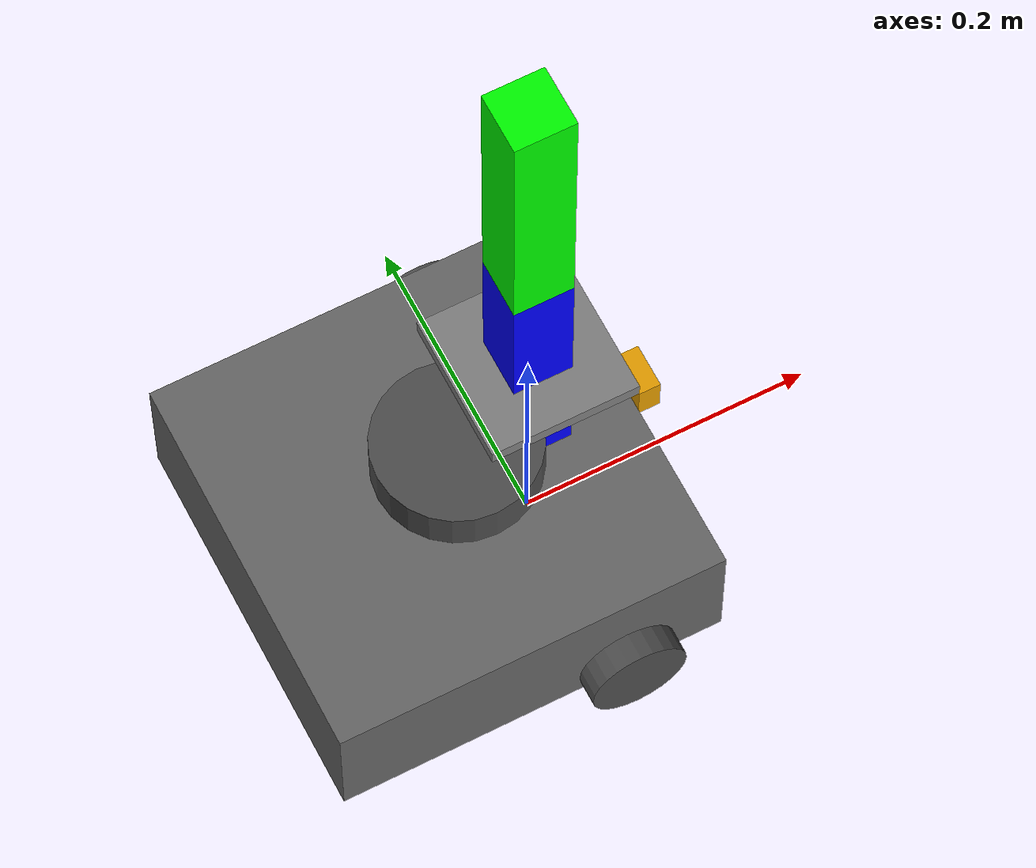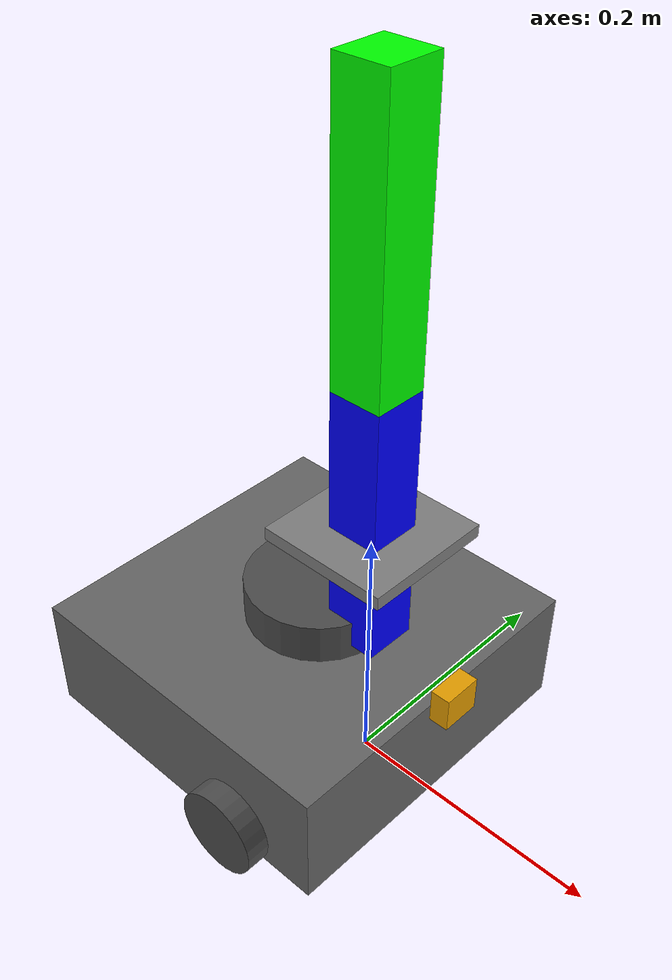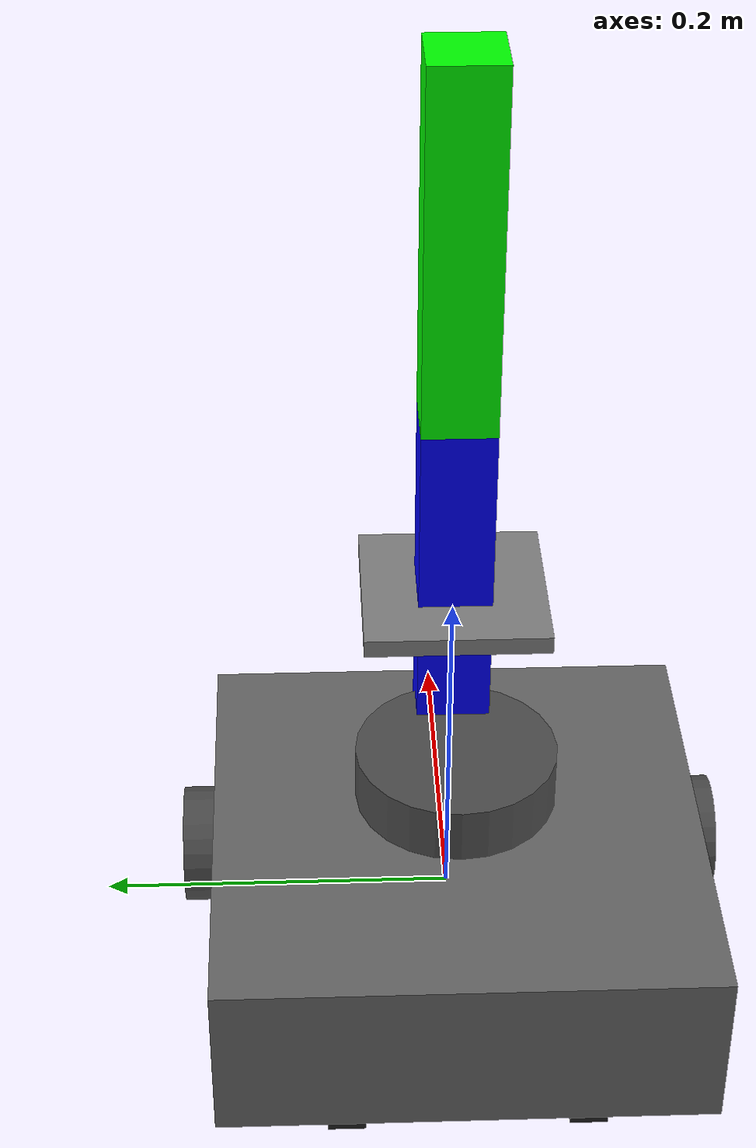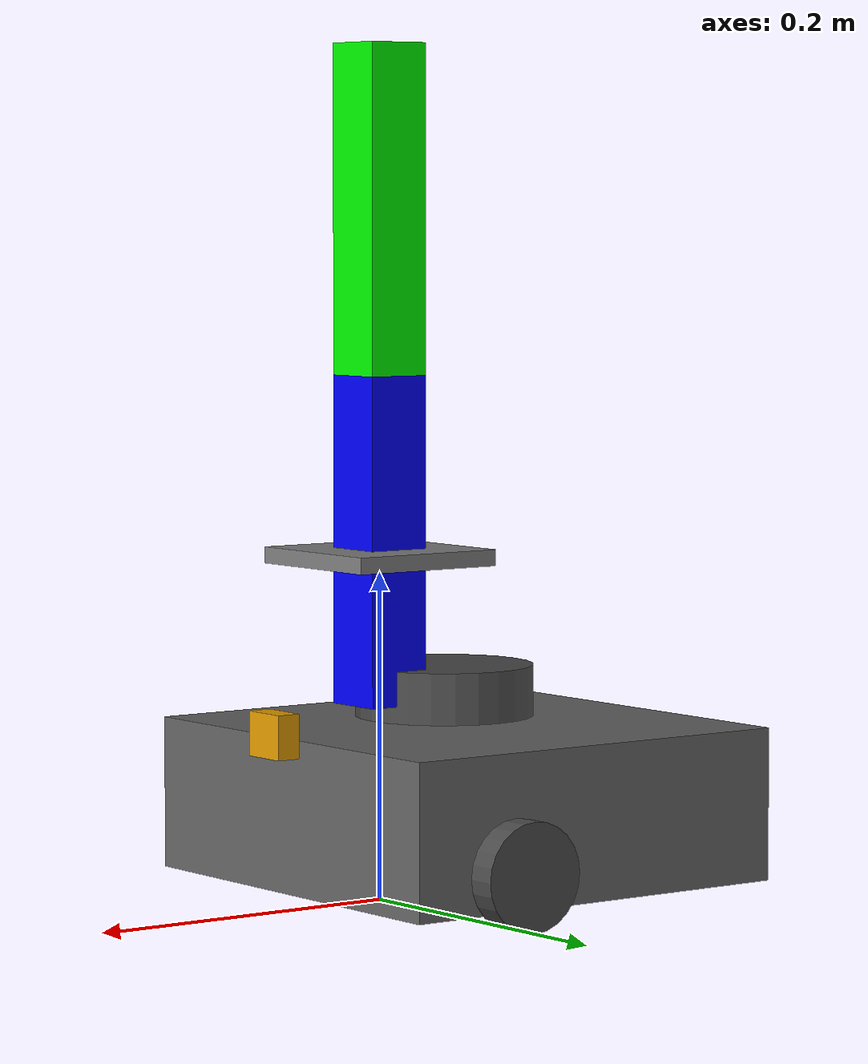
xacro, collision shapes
<?xml version="1.0"?>
<robot name="mobile_manipulator" xmlns:xacro="http://www.ros.org/wiki/xacro">

  <!-- ================== Include Models ================== -->
  <xacro:include filename="$(find turtlebot3_description)/urdf/turtlebot3_waffle_pi.urdf"/>
  <xacro:include filename="$(find mobile_manipulator_description)/urdf/dofbot.urdf.xacro"/>

  <!-- ================== Mount DOFBOT ================== -->
  <joint name="dofbot_on_tb3" type="fixed">
    <parent link="base_link"/>
    <child link="manipulator_base_link"/>
    <origin xyz="0 0 0.20" rpy="0 0 0"/>
  </joint>

  <!-- ================== Gazebo Physics ================== -->
  <gazebo>
    <plugin name="gazebo_ros2_control" filename="libgazebo_ros2_control.so"/>
  </gazebo>

  <!-- ================== Lidar ================== -->
  <gazebo reference="base_scan">
    <sensor name="lidar" type="ray">
      <update_rate>10</update_rate>
      <ray>
        <scan>
          <horizontal>
            <samples>360</samples>
            <min_angle>-3.14</min_angle>
            <max_angle>3.14</max_angle>
          </horizontal>
        </scan>
        <range>
          <min>0.12</min>
          <max>3.5</max>
        </range>
      </ray>
      <plugin name="lidar_plugin" filename="libgazebo_ros_ray_sensor.so">
        <topicName>scan</topicName>
        <frameName>base_scan</frameName>
      </plugin>
    </sensor>
  </gazebo>

  <!-- ================== Camera ================== -->
  <gazebo reference="camera_link">
    <sensor name="camera" type="camera">
      <update_rate>30</update_rate>
      <camera>
        <horizontal_fov>1.396</horizontal_fov>
        <image>
          <width>640</width>
          <height>480</height>
          <format>R8G8B8</format>
        </image>
      </camera>
      <plugin name="camera_plugin" filename="libgazebo_ros_camera.so">
        <cameraName>camera</cameraName>
        <imageTopicName>image_raw</imageTopicName>
        <cameraInfoTopicName>camera_info</cameraInfoTopicName>
        <frameName>camera_link</frameName>
      </plugin>
    </sensor>
  </gazebo>

</robot>

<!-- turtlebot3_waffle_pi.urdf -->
<!-- |    This document was autogenerated by xacro from urdf/turtlebot3_waffle_pi.urdf.xacro | -->
<!-- |    EDITING THIS FILE BY HAND IS NOT RECOMMENDED                                 | -->
<robot name="turtlebot3_waffle_pi">
  <!-- Init colour -->
  <material name="black">
    <color rgba="0.0 0.0 0.0 1.0"/>
  </material>
  <material name="dark">
    <color rgba="0.3 0.3 0.3 1.0"/>
  </material>
  <material name="light_black">
    <color rgba="0.4 0.4 0.4 1.0"/>
  </material>
  <material name="blue">
    <color rgba="0.0 0.0 0.8 1.0"/>
  </material>
  <material name="green">
    <color rgba="0.0 0.8 0.0 1.0"/>
  </material>
  <material name="grey">
    <color rgba="0.5 0.5 0.5 1.0"/>
  </material>
  <material name="orange">
    <color rgba="1.0 0.4235294117647059 0.0392156862745098 1.0"/>
  </material>
  <material name="brown">
    <color rgba="0.8705882352941177 0.8117647058823529 0.7647058823529411 1.0"/>
  </material>
  <material name="red">
    <color rgba="0.8 0.0 0.0 1.0"/>
  </material>
  <material name="white">
    <color rgba="1.0 1.0 1.0 1.0"/>
  </material>
  <gazebo reference="base_link">
    <material>Gazebo/DarkGrey</material>
  </gazebo>
  <gazebo reference="wheel_left_link">
    <mu1>0.1</mu1>
    <mu2>0.1</mu2>
    <kp>500000.0</kp>
    <kd>10.0</kd>
    <minDepth>0.001</minDepth>
    <maxVel>0.1</maxVel>
    <fdir1>1 0 0</fdir1>
    <material>Gazebo/FlatBlack</material>
  </gazebo>
  <gazebo reference="wheel_right_link">
    <mu1>0.1</mu1>
    <mu2>0.1</mu2>
    <kp>500000.0</kp>
    <kd>10.0</kd>
    <minDepth>0.001</minDepth>
    <maxVel>0.1</maxVel>
    <fdir1>1 0 0</fdir1>
    <material>Gazebo/FlatBlack</material>
  </gazebo>
  <gazebo reference="caster_back_right_link">
    <mu1>0.1</mu1>
    <mu2>0.1</mu2>
    <kp>1000000.0</kp>
    <kd>100.0</kd>
    <minDepth>0.001</minDepth>
    <maxVel>1.0</maxVel>
    <material>Gazebo/FlatBlack</material>
  </gazebo>
  <gazebo reference="caster_back_left_link">
    <mu1>0.1</mu1>
    <mu2>0.1</mu2>
    <kp>1000000.0</kp>
    <kd>100.0</kd>
    <minDepth>0.001</minDepth>
    <maxVel>1.0</maxVel>
    <material>Gazebo/FlatBlack</material>
  </gazebo>
  <gazebo reference="imu_link">
    <sensor name="imu" type="imu">
      <always_on>true</always_on>
      <visualize>false</visualize>
    </sensor>
    <material>Gazebo/Grey</material>
  </gazebo>
  <gazebo>
    <plugin filename="libgazebo_ros_diff_drive.so" name="turtlebot3_waffle_pi_controller">
      <commandTopic>cmd_vel</commandTopic>
      <odometryTopic>odom</odometryTopic>
      <odometryFrame>odom</odometryFrame>
      <odometrySource>world</odometrySource>
      <publishOdomTF>true</publishOdomTF>
      <robotBaseFrame>base_footprint</robotBaseFrame>
      <publishWheelTF>false</publishWheelTF>
      <publishTf>true</publishTf>
      <publishWheelJointState>true</publishWheelJointState>
      <legacyMode>false</legacyMode>
      <updateRate>30</updateRate>
      <leftJoint>wheel_left_joint</leftJoint>
      <rightJoint>wheel_right_joint</rightJoint>
      <wheelSeparation>0.287</wheelSeparation>
      <wheelDiameter>0.066</wheelDiameter>
      <wheelAcceleration>1</wheelAcceleration>
      <wheelTorque>10</wheelTorque>
      <rosDebugLevel>na</rosDebugLevel>
    </plugin>
  </gazebo>
  <gazebo>
    <plugin filename="libgazebo_ros_imu.so" name="imu_plugin">
      <alwaysOn>true</alwaysOn>
      <bodyName>imu_link</bodyName>
      <frameName>imu_link</frameName>
      <topicName>imu</topicName>
      <serviceName>imu_service</serviceName>
      <gaussianNoise>0.0</gaussianNoise>
      <updateRate>0</updateRate>
      <imu>
        <noise>
          <type>gaussian</type>
          <rate>
            <mean>0.0</mean>
            <stddev>2e-4</stddev>
            <bias_mean>0.0000075</bias_mean>
            <bias_stddev>0.0000008</bias_stddev>
          </rate>
          <accel>
            <mean>0.0</mean>
            <stddev>1.7e-2</stddev>
            <bias_mean>0.1</bias_mean>
            <bias_stddev>0.001</bias_stddev>
          </accel>
        </noise>
      </imu>
    </plugin>
  </gazebo>
  <gazebo reference="base_scan">
    <material>Gazebo/FlatBlack</material>
    <sensor name="lds_lfcd_sensor" type="ray">
      <pose>0 0 0 0 0 0</pose>
      <visualize>false</visualize>
      <update_rate>5</update_rate>
      <ray>
        <scan>
          <horizontal>
            <samples>360</samples>
            <resolution>1</resolution>
            <min_angle>0.0</min_angle>
            <max_angle>6.28319</max_angle>
          </horizontal>
        </scan>
        <range>
          <min>0.120</min>
          <max>3.5</max>
          <resolution>0.015</resolution>
        </range>
        <noise>
          <type>gaussian</type>
          <mean>0.0</mean>
          <stddev>0.01</stddev>
        </noise>
      </ray>
      <plugin filename="libgazebo_ros_laser.so" name="gazebo_ros_lds_lfcd_controller">
        <topicName>scan</topicName>
        <frameName>base_scan</frameName>
      </plugin>
    </sensor>
  </gazebo>
  <!--link : https://www.raspberrypi.org/documentation/hardware/camera/-->
  <gazebo reference="camera_rgb_frame">
    <sensor name="Pi Camera" type="camera">
      <always_on>true</always_on>
      <visualize>false</visualize>
      <camera>
        <horizontal_fov>1.085595</horizontal_fov>
        <image>
          <width>640</width>
          <height>480</height>
          <format>R8G8B8</format>
        </image>
        <clip>
          <near>0.03</near>
          <far>100</far>
        </clip>
      </camera>
      <plugin filename="libgazebo_ros_camera.so" name="camera_controller">
        <alwaysOn>true</alwaysOn>
        <updateRate>30.0</updateRate>
        <cameraName>camera</cameraName>
        <frameName>camera_rgb_optical_frame</frameName>
        <imageTopicName>rgb/image_raw</imageTopicName>
        <cameraInfoTopicName>rgb/camera_info</cameraInfoTopicName>
        <hackBaseline>0.07</hackBaseline>
        <distortionK1>0.0</distortionK1>
        <distortionK2>0.0</distortionK2>
        <distortionK3>0.0</distortionK3>
        <distortionT1>0.0</distortionT1>
        <distortionT2>0.0</distortionT2>
      </plugin>
    </sensor>
  </gazebo>
  <link name="base_footprint"/>
  <joint name="base_joint" type="fixed">
    <parent link="base_footprint"/>
    <child link="base_link"/>
    <origin rpy="0 0 0" xyz="0 0 0.010"/>
  </joint>
  <link name="base_link">
    <visual>
      <origin rpy="0 0 0" xyz="-0.064 0 0.0"/>
      <geometry>
        <mesh filename="package://turtlebot3_description/meshes/bases/waffle_pi_base.stl" scale="0.001 0.001 0.001"/>
      </geometry>
      <material name="light_black"/>
    </visual>
    <collision>
      <origin rpy="0 0 0" xyz="-0.064 0 0.047"/>
      <geometry>
        <box size="0.266 0.266 0.094"/>
      </geometry>
    </collision>
    <inertial>
      <origin rpy="0 0 0" xyz="0 0 0"/>
      <mass value="1.3729096e+00"/>
      <inertia ixx="8.7002718e-03" ixy="-4.7576583e-05" ixz="1.1160499e-04" iyy="8.6195418e-03" iyz="-3.5422299e-06" izz="1.4612727e-02"/>
    </inertial>
  </link>
  <joint name="wheel_left_joint" type="continuous">
    <parent link="base_link"/>
    <child link="wheel_left_link"/>
    <origin rpy="-1.57 0 0" xyz="0.0 0.144 0.023"/>
    <axis xyz="0 0 1"/>
  </joint>
  <link name="wheel_left_link">
    <visual>
      <origin rpy="1.57 0 0" xyz="0 0 0"/>
      <geometry>
        <mesh filename="package://turtlebot3_description/meshes/wheels/left_tire.stl" scale="0.001 0.001 0.001"/>
      </geometry>
      <material name="dark"/>
    </visual>
    <collision>
      <origin rpy="0 0 0" xyz="0 0 0"/>
      <geometry>
        <cylinder length="0.018" radius="0.033"/>
      </geometry>
    </collision>
    <inertial>
      <origin xyz="0 0 0"/>
      <mass value="2.8498940e-02"/>
      <inertia ixx="1.1175580e-05" ixy="-4.2369783e-11" ixz="-5.9381719e-09" iyy="1.1192413e-05" iyz="-1.4400107e-11" izz="2.0712558e-05"/>
    </inertial>
  </link>
  <joint name="wheel_right_joint" type="continuous">
    <parent link="base_link"/>
    <child link="wheel_right_link"/>
    <origin rpy="-1.57 0 0" xyz="0.0 -0.144 0.023"/>
    <axis xyz="0 0 1"/>
  </joint>
  <link name="wheel_right_link">
    <visual>
      <origin rpy="1.57 0 0" xyz="0 0 0"/>
      <geometry>
        <mesh filename="package://turtlebot3_description/meshes/wheels/right_tire.stl" scale="0.001 0.001 0.001"/>
      </geometry>
      <material name="dark"/>
    </visual>
    <collision>
      <origin rpy="0 0 0" xyz="0 0 0"/>
      <geometry>
        <cylinder length="0.018" radius="0.033"/>
      </geometry>
    </collision>
    <inertial>
      <origin xyz="0 0 0"/>
      <mass value="2.8498940e-02"/>
      <inertia ixx="1.1175580e-05" ixy="-4.2369783e-11" ixz="-5.9381719e-09" iyy="1.1192413e-05" iyz="-1.4400107e-11" izz="2.0712558e-05"/>
    </inertial>
  </link>
  <joint name="caster_back_right_joint" type="fixed">
    <parent link="base_link"/>
    <child link="caster_back_right_link"/>
    <origin rpy="-1.57 0 0" xyz="-0.177 -0.064 -0.004"/>
  </joint>
  <link name="caster_back_right_link">
    <collision>
      <origin rpy="0 0 0" xyz="0 0.001 0"/>
      <geometry>
        <box size="0.030 0.009 0.020"/>
      </geometry>
    </collision>
    <inertial>
      <origin xyz="0 0 0"/>
      <mass value="0.005"/>
      <inertia ixx="0.001" ixy="0.0" ixz="0.0" iyy="0.001" iyz="0.0" izz="0.001"/>
    </inertial>
  </link>
  <joint name="caster_back_left_joint" type="fixed">
    <parent link="base_link"/>
    <child link="caster_back_left_link"/>
    <origin rpy="-1.57 0 0" xyz="-0.177 0.064 -0.004"/>
  </joint>
  <link name="caster_back_left_link">
    <collision>
      <origin rpy="0 0 0" xyz="0 0.001 0"/>
      <geometry>
        <box size="0.030 0.009 0.020"/>
      </geometry>
    </collision>
    <inertial>
      <origin xyz="0 0 0"/>
      <mass value="0.005"/>
      <inertia ixx="0.001" ixy="0.0" ixz="0.0" iyy="0.001" iyz="0.0" izz="0.001"/>
    </inertial>
  </link>
  <joint name="imu_joint" type="fixed">
    <parent link="base_link"/>
    <child link="imu_link"/>
    <origin rpy="0 0 0" xyz="0.0 0 0.068"/>
  </joint>
  <link name="imu_link"/>
  <joint name="scan_joint" type="fixed">
    <parent link="base_link"/>
    <child link="base_scan"/>
    <origin rpy="0 0 0" xyz="-0.064 0 0.122"/>
  </joint>
  <link name="base_scan">
    <visual>
      <origin rpy="0 0 0" xyz="0 0 0.0"/>
      <geometry>
        <mesh filename="package://turtlebot3_description/meshes/sensors/lds.stl" scale="0.001 0.001 0.001"/>
      </geometry>
      <material name="dark"/>
    </visual>
    <collision>
      <origin rpy="0 0 0" xyz="0.015 0 -0.0065"/>
      <geometry>
        <cylinder length="0.0315" radius="0.055"/>
      </geometry>
    </collision>
    <inertial>
      <mass value="0.114"/>
      <origin xyz="0 0 0"/>
      <inertia ixx="0.001" ixy="0.0" ixz="0.0" iyy="0.001" iyz="0.0" izz="0.001"/>
    </inertial>
  </link>
  <joint name="camera_joint" type="fixed">
    <origin rpy="0 0 0" xyz="0.073 -0.011 0.084"/>
    <parent link="base_link"/>
    <child link="camera_link"/>
  </joint>
  <link name="camera_link">
    <collision>
      <origin rpy="0 0 0" xyz="0.005 0.011 0.013"/>
      <geometry>
        <box size="0.015 0.030 0.027"/>
      </geometry>
    </collision>
  </link>
  <joint name="camera_rgb_joint" type="fixed">
    <origin rpy="0 0 0" xyz="0.003 0.011 0.009"/>
    <parent link="camera_link"/>
    <child link="camera_rgb_frame"/>
  </joint>
  <link name="camera_rgb_frame"/>
  <joint name="camera_rgb_optical_joint" type="fixed">
    <origin rpy="-1.57 0 -1.57" xyz="0 0 0"/>
    <parent link="camera_rgb_frame"/>
    <child link="camera_rgb_optical_frame"/>
  </joint>
  <link name="camera_rgb_optical_frame"/>
</robot>

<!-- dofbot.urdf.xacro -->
<robot name="dofbot" xmlns:xacro="http://www.ros.org/wiki/xacro">

    <!-- Property Variables -->
    <xacro:property name="PI" value="3.14159265359"/>
    <xacro:property name="link_width" value="0.04"/>
    <xacro:property name="link_length" value="0.2"/>
    <xacro:property name="base_size" value="0.1"/>
    <xacro:property name="base_height" value="0.01"/>

    <!-- Base Link -->
    <link name="manipulator_base_link">
        <visual>
            <geometry>
                <box size="${base_size} ${base_size} ${base_height}"/>
            </geometry>
            <material name="Gray">
                <color rgba="0.5 0.5 0.5 1"/>
            </material>
        </visual>
        <collision>
            <geometry>
                <box size="${base_size} ${base_size} ${base_height}"/>
            </geometry>
        </collision>
        <inertial>
            <mass value="0.5"/>
            <inertia ixx="0.001" ixy="0" ixz="0" iyy="0.001" iyz="0" izz="0.001"/>
        </inertial>
    </link>

    <!-- Link1 -->
    <link name="link1">
        <visual>
            <geometry>
                <box size="${link_width} ${link_width} ${link_length}"/>
            </geometry>
            <material name="Blue">
                <color rgba="0 0 1 1"/>
            </material>
        </visual>
        <collision>
            <geometry>
                <box size="${link_width} ${link_width} ${link_length}"/>
            </geometry>
        </collision>
        <inertial>
            <mass value="0.2"/>
            <inertia ixx="0.0002" ixy="0" ixz="0" iyy="0.0002" iyz="0" izz="0.0002"/>
        </inertial>
    </link>

    <!-- Link2 -->
    <link name="link2">
        <visual>
            <geometry>
                <box size="${link_width} ${link_width} ${link_length}"/>
            </geometry>
            <material name="Green">
                <color rgba="0 1 0 1"/>
            </material>
        </visual>
        <collision>
            <geometry>
                <box size="${link_width} ${link_width} ${link_length}"/>
            </geometry>
        </collision>
        <inertial>
            <mass value="0.2"/>
            <inertia ixx="0.0002" ixy="0" ixz="0" iyy="0.0002" iyz="0" izz="0.0002"/>
        </inertial>
    </link>

    <!-- Joint1: Base -> Link1 -->
    <joint name="joint1" type="revolute">
        <parent link="manipulator_base_link"/>
        <child link="link1"/>
        <origin xyz="0 0 ${base_height}" rpy="0 0 0"/>
        <axis xyz="0 0 1"/>
        <limit lower="-${PI}" upper="${PI}" velocity="0.5" effort="10.0"/>
    </joint>

    <!-- Joint2: Link1 -> Link2 -->
    <joint name="joint2" type="revolute">
        <parent link="link1"/>
        <child link="link2"/>
        <origin xyz="0 0 ${link_length}" rpy="0 0 0"/>
        <axis xyz="0 1 0"/>
        <limit lower="-1.57" upper="1.57" velocity="0.5" effort="10.0"/>
    </joint>

</robot>
